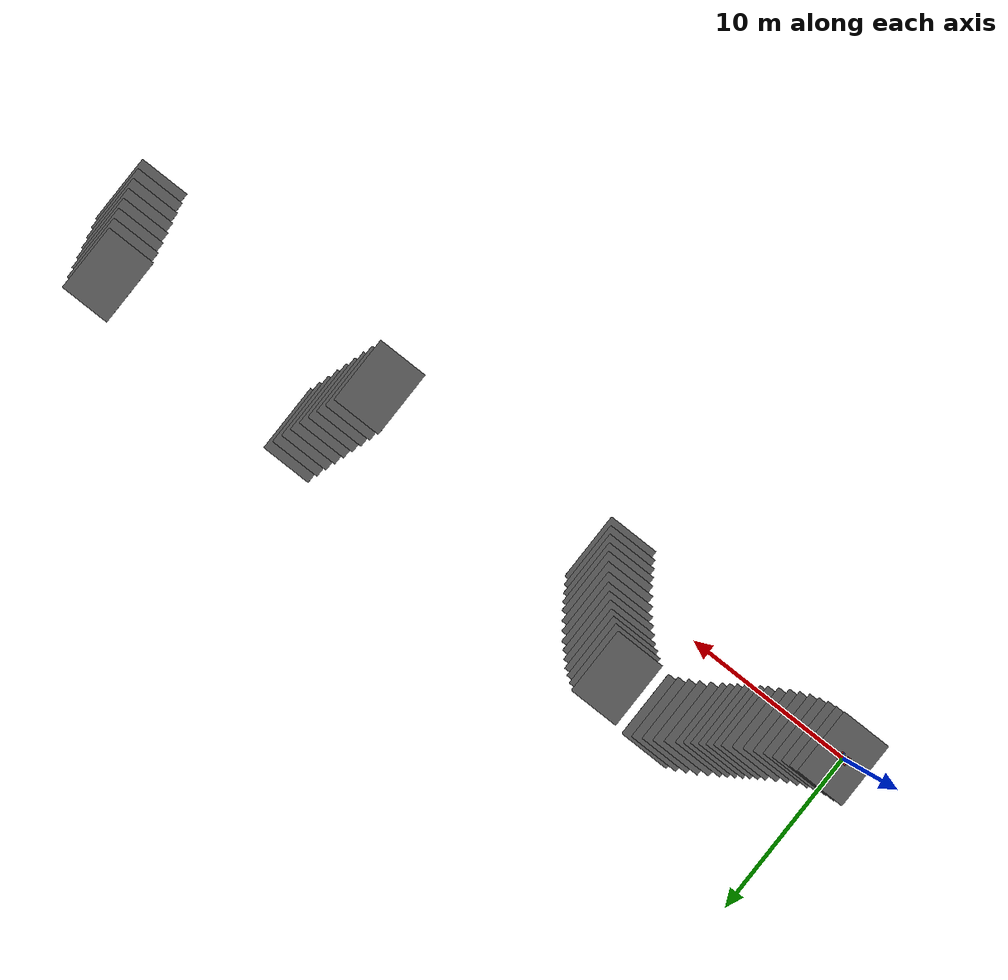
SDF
<sdf version="1.7">
 <world name="default">
  <model name="steer_bot">
   <link name="base_link">
    <inertial>
     <pose>0.00098 0.00098 0.001961 0 -0 0</pose>
     <mass>5.1</mass>
     <inertia>
      <ixx>0.042913</ixx>
      <ixy>-0.000245098</ixy>
      <ixz>-0.000490196</ixz>
      <iyy>0.10958</iyy>
      <iyz>-0.000490196</iyz>
      <izz>0.142157</izz>
     </inertia>
    </inertial>
    <collision name="base_link_collision"><geometry><box><size>0.5 0.3 0.1</size></box></geometry></collision>
    <collision name="base_link_fixed_joint_lump__imu_box_collision_1">
     <pose>0 0 0.05 0 -0 0</pose>
     <geometry><box><size>0.05 0.05 0.05</size></box></geometry>
    </collision>
    <visual name="base_link_visual">
     <geometry><box><size>0.5 0.3 0.1</size></box></geometry>
     <material>
      <script><name>Gazebo/Green</name><uri>file://media/materials/scripts/gazebo.material</uri></script>
     </material>
    </visual>
    <visual name="base_link_fixed_joint_lump__imu_box_visual_1">
     <pose>0 0 0.05 0 -0 0</pose>
     <geometry><box><size>0.05 0.05 0.05</size></box></geometry>
     <material>
      <script><name>Gazebo/White</name><uri>file://media/materials/scripts/gazebo.material</uri></script>
     </material>
    </visual>
    <sensor name="imu_sensor" type="imu">
     <always_on>1</always_on>
     <update_rate>100</update_rate>
     <visualize>1</visualize>
     <topic>__default_topic__</topic>
     <plugin name="imu_plugin" filename="libgazebo_ros_imu_sensor.so">
      <topicName>imu</topicName>
      <bodyName>imu_link</bodyName>
      <updateRateHZ>10.0</updateRateHZ>
      <gaussianNoise>2.89e-08</gaussianNoise>
      <xyzOffset>0 0 0</xyzOffset>
      <rpyOffset>0 0 0</rpyOffset>
      <frameName>imu_link</frameName>
      <inertialOrientationAsReference>0</inertialOrientationAsReference>
      <robotNamespace>/steer_bot/</robotNamespace>
     </plugin>
     <pose>0 0 0.05 0 -0 0</pose>
    </sensor>
   </link>
   <joint name="front_left_steer_joint" type="revolute">
    <pose relative_to="base_link">0.2 0.2 0.12 0 -0 0</pose>
    <parent>base_link</parent>
    <child>front_left_steer_link</child>
    <axis>
     <xyz>0 0 1</xyz>
     <limit><lower>-0.785398</lower><upper>0.785398</upper><effort>10</effort><velocity>5</velocity></limit>
     <dynamics><spring_reference>0</spring_reference><spring_stiffness>0</spring_stiffness></dynamics>
    </axis>
   </joint>
   <link name="front_left_steer_link">
    <pose relative_to="front_left_steer_joint">0 0 0 0 -0 0</pose>
    <inertial>
     <mass>1</mass>
     <inertia>
      <ixx>0.000658333</ixx>
      <ixy>0</ixy>
      <ixz>0</ixz>
      <iyy>0.000658333</iyy>
      <iyz>0</iyz>
      <izz>0.00125</izz>
     </inertia>
    </inertial>
    <collision name="front_left_steer_link_collision">
     <geometry><cylinder><length>0.02</length><radius>0.05</radius></cylinder></geometry>
    </collision>
    <visual name="front_left_steer_link_visual">
     <geometry><cylinder><length>0.02</length><radius>0.05</radius></cylinder></geometry>
     <material>
      <script><name>Gazebo/Blue</name><uri>file://media/materials/scripts/gazebo.material</uri></script>
     </material>
    </visual>
   </link>
   <joint name="front_left_wheel_joint" type="revolute">
    <pose relative_to="front_left_steer_link">0 0 -0.12 -1.5708 0 0</pose>
    <parent>front_left_steer_link</parent>
    <child>front_left_wheel_link</child>
    <axis>
     <xyz>0 0 1</xyz>
     <limit><lower>-1e+16</lower><upper>1e+16</upper></limit>
     <dynamics><spring_reference>0</spring_reference><spring_stiffness>0</spring_stiffness></dynamics>
    </axis>
   </joint>
   <link name="front_left_wheel_link">
    <pose relative_to="front_left_wheel_joint">0 0 0 0 -0 0</pose>
    <inertial>
     <mass>1</mass>
     <inertia>
      <ixx>0.00303333</ixx>
      <ixy>0</ixy>
      <ixz>0</ixz>
      <iyy>0.00303333</iyy>
      <iyz>0</iyz>
      <izz>0.005</izz>
     </inertia>
    </inertial>
    <collision name="front_left_wheel_link_collision">
     <geometry><cylinder><length>0.08</length><radius>0.1</radius></cylinder></geometry>
    </collision>
    <visual name="front_left_wheel_link_visual">
     <geometry><cylinder><length>0.08</length><radius>0.1</radius></cylinder></geometry>
     <material>
      <script><name>Gazebo/Red</name><uri>file://media/materials/scripts/gazebo.material</uri></script>
     </material>
    </visual>
   </link>
   <joint name="front_right_steer_joint" type="revolute">
    <pose relative_to="base_link">0.2 -0.2 0.12 0 -0 0</pose>
    <parent>base_link</parent>
    <child>front_right_steer_link</child>
    <axis>
     <xyz>0 0 1</xyz>
     <limit><lower>-0.785398</lower><upper>0.785398</upper><effort>10</effort><velocity>5</velocity></limit>
     <dynamics><spring_reference>0</spring_reference><spring_stiffness>0</spring_stiffness></dynamics>
    </axis>
   </joint>
   <link name="front_right_steer_link">
    <pose relative_to="front_right_steer_joint">0 0 0 0 -0 0</pose>
    <inertial>
     <mass>1</mass>
     <inertia>
      <ixx>0.000658333</ixx>
      <ixy>0</ixy>
      <ixz>0</ixz>
      <iyy>0.000658333</iyy>
      <iyz>0</iyz>
      <izz>0.00125</izz>
     </inertia>
    </inertial>
    <collision name="front_right_steer_link_collision">
     <geometry><cylinder><length>0.02</length><radius>0.05</radius></cylinder></geometry>
    </collision>
    <visual name="front_right_steer_link_visual">
     <geometry><cylinder><length>0.02</length><radius>0.05</radius></cylinder></geometry>
     <material>
      <script><name>Gazebo/Blue</name><uri>file://media/materials/scripts/gazebo.material</uri></script>
     </material>
    </visual>
   </link>
   <joint name="front_right_wheel_joint" type="revolute">
    <pose relative_to="front_right_steer_link">0 0 -0.12 -1.5708 0 0</pose>
    <parent>front_right_steer_link</parent>
    <child>front_right_wheel_link</child>
    <axis>
     <xyz>0 0 1</xyz>
     <limit><lower>-1e+16</lower><upper>1e+16</upper></limit>
     <dynamics><spring_reference>0</spring_reference><spring_stiffness>0</spring_stiffness></dynamics>
    </axis>
   </joint>
   <link name="front_right_wheel_link">
    <pose relative_to="front_right_wheel_joint">0 0 0 0 -0 0</pose>
    <inertial>
     <mass>1</mass>
     <inertia>
      <ixx>0.00303333</ixx>
      <ixy>0</ixy>
      <ixz>0</ixz>
      <iyy>0.00303333</iyy>
      <iyz>0</iyz>
      <izz>0.005</izz>
     </inertia>
    </inertial>
    <collision name="front_right_wheel_link_collision">
     <geometry><cylinder><length>0.08</length><radius>0.1</radius></cylinder></geometry>
    </collision>
    <visual name="front_right_wheel_link_visual">
     <geometry><cylinder><length>0.08</length><radius>0.1</radius></cylinder></geometry>
     <material>
      <script><name>Gazebo/Red</name><uri>file://media/materials/scripts/gazebo.material</uri></script>
     </material>
    </visual>
   </link>
   <joint name="front_steer_joint" type="revolute">
    <pose relative_to="base_link">0.2 0 0.12 0 -0 0</pose>
    <parent>base_link</parent>
    <child>front_steer_link</child>
    <axis>
     <xyz>0 0 1</xyz>
     <limit><lower>-3.14159</lower><upper>3.14159</upper><effort>10</effort><velocity>5</velocity></limit>
     <dynamics><spring_reference>0</spring_reference><spring_stiffness>0</spring_stiffness></dynamics>
    </axis>
   </joint>
   <link name="front_steer_link">
    <pose relative_to="front_steer_joint">0 0 0 0 -0 0</pose>
    <inertial>
     <mass>1</mass>
     <inertia>
      <ixx>0.000658333</ixx>
      <ixy>0</ixy>
      <ixz>0</ixz>
      <iyy>0.000658333</iyy>
      <iyz>0</iyz>
      <izz>0.00125</izz>
     </inertia>
    </inertial>
    <collision name="front_steer_link_collision">
     <geometry><cylinder><length>0.02</length><radius>0.05</radius></cylinder></geometry>
    </collision>
    <visual name="front_steer_link_visual">
     <geometry><cylinder><length>0.02</length><radius>0.05</radius></cylinder></geometry>
     <material>
      <script><name>Gazebo/Yellow</name><uri>file://media/materials/scripts/gazebo.material</uri></script>
     </material>
    </visual>
   </link>
   <joint name="rear_left_wheel_joint" type="revolute">
    <pose relative_to="base_link">-0.2 0.2 0 -1.5708 0 0</pose>
    <parent>base_link</parent>
    <child>rear_left_wheel_link</child>
    <axis>
     <xyz>0 0 1</xyz>
     <limit><lower>-1e+16</lower><upper>1e+16</upper></limit>
     <dynamics><spring_reference>0</spring_reference><spring_stiffness>0</spring_stiffness></dynamics>
    </axis>
   </joint>
   <link name="rear_left_wheel_link">
    <pose relative_to="rear_left_wheel_joint">0 0 0 0 -0 0</pose>
    <inertial>
     <mass>1</mass>
     <inertia>
      <ixx>0.00303333</ixx>
      <ixy>0</ixy>
      <ixz>0</ixz>
      <iyy>0.00303333</iyy>
      <iyz>0</iyz>
      <izz>0.005</izz>
     </inertia>
    </inertial>
    <collision name="rear_left_wheel_link_collision">
     <geometry><cylinder><length>0.08</length><radius>0.1</radius></cylinder></geometry>
    </collision>
    <visual name="rear_left_wheel_link_visual">
     <geometry><cylinder><length>0.08</length><radius>0.1</radius></cylinder></geometry>
     <material>
      <script><name>Gazebo/Red</name><uri>file://media/materials/scripts/gazebo.material</uri></script>
     </material>
    </visual>
   </link>
   <joint name="rear_right_wheel_joint" type="revolute">
    <pose relative_to="base_link">-0.2 -0.2 0 -1.5708 0 0</pose>
    <parent>base_link</parent>
    <child>rear_right_wheel_link</child>
    <axis>
     <xyz>0 0 1</xyz>
     <limit><lower>-1e+16</lower><upper>1e+16</upper></limit>
     <dynamics><spring_reference>0</spring_reference><spring_stiffness>0</spring_stiffness></dynamics>
    </axis>
   </joint>
   <link name="rear_right_wheel_link">
    <pose relative_to="rear_right_wheel_joint">0 0 0 0 -0 0</pose>
    <inertial>
     <mass>1</mass>
     <inertia>
      <ixx>0.00303333</ixx>
      <ixy>0</ixy>
      <ixz>0</ixz>
      <iyy>0.00303333</iyy>
      <iyz>0</iyz>
      <izz>0.005</izz>
     </inertia>
    </inertial>
    <collision name="rear_right_wheel_link_collision">
     <geometry><cylinder><length>0.08</length><radius>0.1</radius></cylinder></geometry>
    </collision>
    <visual name="rear_right_wheel_link_visual">
     <geometry><cylinder><length>0.08</length><radius>0.1</radius></cylinder></geometry>
     <material>
      <script><name>Gazebo/Red</name><uri>file://media/materials/scripts/gazebo.material</uri></script>
     </material>
    </visual>
   </link>
   <joint name="rear_wheel_joint" type="revolute">
    <pose relative_to="base_link">-0.2 0 0 -1.5708 0 0</pose>
    <parent>base_link</parent>
    <child>rear_wheel_link</child>
    <axis>
     <xyz>0 0 1</xyz>
     <limit><lower>-1e+16</lower><upper>1e+16</upper></limit>
     <dynamics><spring_reference>0</spring_reference><spring_stiffness>0</spring_stiffness></dynamics>
    </axis>
   </joint>
   <link name="rear_wheel_link">
    <pose relative_to="rear_wheel_joint">0 0 0 0 -0 0</pose>
    <inertial>
     <mass>0.03125</mass>
     <inertia>
      <ixx>9.04948e-06</ixx>
      <ixy>0</ixy>
      <ixz>0</ixz>
      <iyy>9.04948e-06</iyy>
      <iyz>0</iyz>
      <izz>9.76563e-06</izz>
     </inertia>
    </inertial>
    <collision name="rear_wheel_link_collision">
     <geometry><cylinder><length>0.04</length><radius>0.025</radius></cylinder></geometry>
    </collision>
    <visual name="rear_wheel_link_visual">
     <geometry><cylinder><length>0.04</length><radius>0.025</radius></cylinder></geometry>
     <material>
      <script><name>Gazebo/Yellow</name><uri>file://media/materials/scripts/gazebo.material</uri></script>
     </material>
    </visual>
   </link>
   <static>0</static>
   <plugin name="gazebo_ros_control" filename="libgazebo_ros_control.so">
    <robotNamespace>/steer_bot</robotNamespace>
    <robotSimType>steer_bot_hardware_gazebo/SteerBotHardwareGazebo</robotSimType>
    <legacyModeNS>0</legacyModeNS>
   </plugin>
   <plugin name="p3d_base_controller" filename="libgazebo_ros_p3d.so">
    <alwaysOn>1</alwaysOn>
    <updateRate>50.0</updateRate>
    <bodyName>base_link</bodyName>
    <topicName>pose_ground_truth</topicName>
    <gaussianNoise>0.00</gaussianNoise>
    <frameName>world</frameName>
    <xyzOffsets>0 0 0</xyzOffsets>
    <rpyOffsets>0 0 0</rpyOffsets>
    <robotNamespace>/steer_bot/</robotNamespace>
   </plugin>
   <pose>-0.002082 -0.017108 0.104996 0 6e-06 -0.057589</pose>
  </model>
  <model name="roadSegment_0_0">
   <static>1</static>
   <link name="link">
    <collision name="collision"><geometry><box><size>3 4 0.01</size></box></geometry></collision>
    <visual name="visual">
     <cast_shadows>0</cast_shadows>
     <geometry><box><size>3 4 0.01</size></box></geometry>
     <material>
      <script>
       <uri>model://asphalt_plane/materials/scripts</uri>
       <uri>model://asphalt_plane/materials/textures</uri>
       <name>vrc/asphalt</name>
      </script>
     </material>
    </visual>
   </link>
  </model>
  <model name="roadSegment_0_1">
   <static>1</static>
   <link name="link">
    <collision name="collision"><geometry><box><size>3 4 0.01</size></box></geometry></collision>
    <visual name="visual">
     <cast_shadows>0</cast_shadows>
     <geometry><box><size>3 4 0.01</size></box></geometry>
     <material>
      <script>
       <uri>model://asphalt_plane/materials/scripts</uri>
       <uri>model://asphalt_plane/materials/textures</uri>
       <name>vrc/asphalt</name>
      </script>
     </material>
    </visual>
   </link>
   <pose>0.5 0.049667 0 0 -0 0</pose>
  </model>
  <model name="roadSegment_1_0">
   <static>1</static>
   <link name="link">
    <collision name="collision"><geometry><box><size>3 4 0.01</size></box></geometry></collision>
    <visual name="visual">
     <cast_shadows>0</cast_shadows>
     <geometry><box><size>3 4 0.01</size></box></geometry>
     <material>
      <script>
       <uri>model://asphalt_plane/materials/scripts</uri>
       <uri>model://asphalt_plane/materials/textures</uri>
       <name>vrc/asphalt</name>
      </script>
     </material>
    </visual>
   </link>
   <pose>1 0.099335 0 0 -0 0</pose>
  </model>
  <model name="roadSegment_1_1">
   <static>1</static>
   <link name="link">
    <collision name="collision"><geometry><box><size>3 4 0.01</size></box></geometry></collision>
    <visual name="visual">
     <cast_shadows>0</cast_shadows>
     <geometry><box><size>3 4 0.01</size></box></geometry>
     <material>
      <script>
       <uri>model://asphalt_plane/materials/scripts</uri>
       <uri>model://asphalt_plane/materials/textures</uri>
       <name>vrc/asphalt</name>
      </script>
     </material>
    </visual>
   </link>
   <pose>1.5 0.244377 0 0 -0 0</pose>
  </model>
  <model name="roadSegment_2_0">
   <static>1</static>
   <link name="link">
    <collision name="collision"><geometry><box><size>3 4 0.01</size></box></geometry></collision>
    <visual name="visual">
     <cast_shadows>0</cast_shadows>
     <geometry><box><size>3 4 0.01</size></box></geometry>
     <material>
      <script>
       <uri>model://asphalt_plane/materials/scripts</uri>
       <uri>model://asphalt_plane/materials/textures</uri>
       <name>vrc/asphalt</name>
      </script>
     </material>
    </visual>
   </link>
   <pose>2 0.389418 0 0 -0 0</pose>
  </model>
  <model name="roadSegment_2_1">
   <static>1</static>
   <link name="link">
    <collision name="collision"><geometry><box><size>3 4 0.01</size></box></geometry></collision>
    <visual name="visual">
     <cast_shadows>0</cast_shadows>
     <geometry><box><size>3 4 0.01</size></box></geometry>
     <material>
      <script>
       <uri>model://asphalt_plane/materials/scripts</uri>
       <uri>model://asphalt_plane/materials/textures</uri>
       <name>vrc/asphalt</name>
      </script>
     </material>
    </visual>
   </link>
   <pose>2.5 0.618191 0 0 -0 0</pose>
  </model>
  <model name="roadSegment_3_0">
   <static>1</static>
   <link name="link">
    <collision name="collision"><geometry><box><size>3 4 0.01</size></box></geometry></collision>
    <visual name="visual">
     <cast_shadows>0</cast_shadows>
     <geometry><box><size>3 4 0.01</size></box></geometry>
     <material>
      <script>
       <uri>model://asphalt_plane/materials/scripts</uri>
       <uri>model://asphalt_plane/materials/textures</uri>
       <name>vrc/asphalt</name>
      </script>
     </material>
    </visual>
   </link>
   <pose>3 0.846964 0 0 -0 0</pose>
  </model>
  <model name="roadSegment_3_1">
   <static>1</static>
   <link name="link">
    <collision name="collision"><geometry><box><size>3 4 0.01</size></box></geometry></collision>
    <visual name="visual">
     <cast_shadows>0</cast_shadows>
     <geometry><box><size>3 4 0.01</size></box></geometry>
     <material>
      <script>
       <uri>model://asphalt_plane/materials/scripts</uri>
       <uri>model://asphalt_plane/materials/textures</uri>
       <name>vrc/asphalt</name>
      </script>
     </material>
    </visual>
   </link>
   <pose>3.5 1.14084 0 0 -0 0</pose>
  </model>
  <model name="roadSegment_4_0">
   <static>1</static>
   <link name="link">
    <collision name="collision"><geometry><box><size>3 4 0.01</size></box></geometry></collision>
    <visual name="visual">
     <cast_shadows>0</cast_shadows>
     <geometry><box><size>3 4 0.01</size></box></geometry>
     <material>
      <script>
       <uri>model://asphalt_plane/materials/scripts</uri>
       <uri>model://asphalt_plane/materials/textures</uri>
       <name>vrc/asphalt</name>
      </script>
     </material>
    </visual>
   </link>
   <pose>4 1.43471 0 0 -0 0</pose>
  </model>
  <model name="roadSegment_4_1">
   <static>1</static>
   <link name="link">
    <collision name="collision"><geometry><box><size>3 4 0.01</size></box></geometry></collision>
    <visual name="visual">
     <cast_shadows>0</cast_shadows>
     <geometry><box><size>3 4 0.01</size></box></geometry>
     <material>
      <script>
       <uri>model://asphalt_plane/materials/scripts</uri>
       <uri>model://asphalt_plane/materials/textures</uri>
       <name>vrc/asphalt</name>
      </script>
     </material>
    </visual>
   </link>
   <pose>4.33333 1.6577 0 0 -0 0</pose>
  </model>
  <model name="roadSegment_4_2">
   <static>1</static>
   <link name="link">
    <collision name="collision"><geometry><box><size>3 4 0.01</size></box></geometry></collision>
    <visual name="visual">
     <cast_shadows>0</cast_shadows>
     <geometry><box><size>3 4 0.01</size></box></geometry>
     <material>
      <script>
       <uri>model://asphalt_plane/materials/scripts</uri>
       <uri>model://asphalt_plane/materials/textures</uri>
       <name>vrc/asphalt</name>
      </script>
     </material>
    </visual>
   </link>
   <pose>4.66667 1.88069 0 0 -0 0</pose>
  </model>
  <model name="roadSegment_5_0">
   <static>1</static>
   <link name="link">
    <collision name="collision"><geometry><box><size>3 4 0.01</size></box></geometry></collision>
    <visual name="visual">
     <cast_shadows>0</cast_shadows>
     <geometry><box><size>3 4 0.01</size></box></geometry>
     <material>
      <script>
       <uri>model://asphalt_plane/materials/scripts</uri>
       <uri>model://asphalt_plane/materials/textures</uri>
       <name>vrc/asphalt</name>
      </script>
     </material>
    </visual>
   </link>
   <pose>5 2.10368 0 0 -0 0</pose>
  </model>
  <model name="roadSegment_5_1">
   <static>1</static>
   <link name="link">
    <collision name="collision"><geometry><box><size>3 4 0.01</size></box></geometry></collision>
    <visual name="visual">
     <cast_shadows>0</cast_shadows>
     <geometry><box><size>3 4 0.01</size></box></geometry>
     <material>
      <script>
       <uri>model://asphalt_plane/materials/scripts</uri>
       <uri>model://asphalt_plane/materials/textures</uri>
       <name>vrc/asphalt</name>
      </script>
     </material>
    </visual>
   </link>
   <pose>5.33333 2.33449 0 0 -0 0</pose>
  </model>
  <model name="roadSegment_5_2">
   <static>1</static>
   <link name="link">
    <collision name="collision"><geometry><box><size>3 4 0.01</size></box></geometry></collision>
    <visual name="visual">
     <cast_shadows>0</cast_shadows>
     <geometry><box><size>3 4 0.01</size></box></geometry>
     <material>
      <script>
       <uri>model://asphalt_plane/materials/scripts</uri>
       <uri>model://asphalt_plane/materials/textures</uri>
       <name>vrc/asphalt</name>
      </script>
     </material>
    </visual>
   </link>
   <pose>5.66667 2.5653 0 0 -0 0</pose>
  </model>
  <model name="roadSegment_6_0">
   <static>1</static>
   <link name="link">
    <collision name="collision"><geometry><box><size>3 4 0.01</size></box></geometry></collision>
    <visual name="visual">
     <cast_shadows>0</cast_shadows>
     <geometry><box><size>3 4 0.01</size></box></geometry>
     <material>
      <script>
       <uri>model://asphalt_plane/materials/scripts</uri>
       <uri>model://asphalt_plane/materials/textures</uri>
       <name>vrc/asphalt</name>
      </script>
     </material>
    </visual>
   </link>
   <pose>6 2.79612 0 0 -0 0</pose>
  </model>
  <model name="roadSegment_6_1">
   <static>1</static>
   <link name="link">
    <collision name="collision"><geometry><box><size>3 4 0.01</size></box></geometry></collision>
    <visual name="visual">
     <cast_shadows>0</cast_shadows>
     <geometry><box><size>3 4 0.01</size></box></geometry>
     <material>
      <script>
       <uri>model://asphalt_plane/materials/scripts</uri>
       <uri>model://asphalt_plane/materials/textures</uri>
       <name>vrc/asphalt</name>
      </script>
     </material>
    </visual>
   </link>
   <pose>6.5 3.1226 0 0 -0 0</pose>
  </model>
  <model name="roadSegment_7_0">
   <static>1</static>
   <link name="link">
    <collision name="collision"><geometry><box><size>3 4 0.01</size></box></geometry></collision>
    <visual name="visual">
     <cast_shadows>0</cast_shadows>
     <geometry><box><size>3 4 0.01</size></box></geometry>
     <material>
      <script>
       <uri>model://asphalt_plane/materials/scripts</uri>
       <uri>model://asphalt_plane/materials/textures</uri>
       <name>vrc/asphalt</name>
      </script>
     </material>
    </visual>
   </link>
   <pose>7 3.44907 0 0 -0 0</pose>
  </model>
  <model name="roadSegment_7_1">
   <static>1</static>
   <link name="link">
    <collision name="collision"><geometry><box><size>3 4 0.01</size></box></geometry></collision>
    <visual name="visual">
     <cast_shadows>0</cast_shadows>
     <geometry><box><size>3 4 0.01</size></box></geometry>
     <material>
      <script>
       <uri>model://asphalt_plane/materials/scripts</uri>
       <uri>model://asphalt_plane/materials/textures</uri>
       <name>vrc/asphalt</name>
      </script>
     </material>
    </visual>
   </link>
   <pose>7.5 3.72368 0 0 -0 0</pose>
  </model>
  <model name="roadSegment_8_0">
   <static>1</static>
   <link name="link">
    <collision name="collision"><geometry><box><size>3 4 0.01</size></box></geometry></collision>
    <visual name="visual">
     <cast_shadows>0</cast_shadows>
     <geometry><box><size>3 4 0.01</size></box></geometry>
     <material>
      <script>
       <uri>model://asphalt_plane/materials/scripts</uri>
       <uri>model://asphalt_plane/materials/textures</uri>
       <name>vrc/asphalt</name>
      </script>
     </material>
    </visual>
   </link>
   <pose>8 3.99829 0 0 -0 0</pose>
  </model>
  <model name="roadSegment_8_1">
   <static>1</static>
   <link name="link">
    <collision name="collision"><geometry><box><size>3 4 0.01</size></box></geometry></collision>
    <visual name="visual">
     <cast_shadows>0</cast_shadows>
     <geometry><box><size>3 4 0.01</size></box></geometry>
     <material>
      <script>
       <uri>model://asphalt_plane/materials/scripts</uri>
       <uri>model://asphalt_plane/materials/textures</uri>
       <name>vrc/asphalt</name>
      </script>
     </material>
    </visual>
   </link>
   <pose>8.5 4.1903 0 0 -0 0</pose>
  </model>
  <model name="roadSegment_12_0">
   <static>1</static>
   <link name="link">
    <collision name="collision"><geometry><box><size>3 4 0.01</size></box></geometry></collision>
    <visual name="visual">
     <cast_shadows>0</cast_shadows>
     <geometry><box><size>3 4 0.01</size></box></geometry>
     <material>
      <script>
       <uri>model://asphalt_plane/materials/scripts</uri>
       <uri>model://asphalt_plane/materials/textures</uri>
       <name>vrc/asphalt</name>
      </script>
     </material>
    </visual>
   </link>
   <pose>12 4.05278 0 0 -0 0</pose>
  </model>
  <model name="roadSegment_12_1">
   <static>1</static>
   <link name="link">
    <collision name="collision"><geometry><box><size>3 4 0.01</size></box></geometry></collision>
    <visual name="visual">
     <cast_shadows>0</cast_shadows>
     <geometry><box><size>3 4 0.01</size></box></geometry>
     <material>
      <script>
       <uri>model://asphalt_plane/materials/scripts</uri>
       <uri>model://asphalt_plane/materials/textures</uri>
       <name>vrc/asphalt</name>
      </script>
     </material>
    </visual>
   </link>
   <pose>12.3333 3.81877 0 0 -0 0</pose>
  </model>
  <model name="roadSegment_12_2">
   <static>1</static>
   <link name="link">
    <collision name="collision"><geometry><box><size>3 4 0.01</size></box></geometry></collision>
    <visual name="visual">
     <cast_shadows>0</cast_shadows>
     <geometry><box><size>3 4 0.01</size></box></geometry>
     <material>
      <script>
       <uri>model://asphalt_plane/materials/scripts</uri>
       <uri>model://asphalt_plane/materials/textures</uri>
       <name>vrc/asphalt</name>
      </script>
     </material>
    </visual>
   </link>
   <pose>12.6667 3.58477 0 0 -0 0</pose>
  </model>
  <model name="roadSegment_13_0">
   <static>1</static>
   <link name="link">
    <collision name="collision"><geometry><box><size>3 4 0.01</size></box></geometry></collision>
    <visual name="visual">
     <cast_shadows>0</cast_shadows>
     <geometry><box><size>3 4 0.01</size></box></geometry>
     <material>
      <script>
       <uri>model://asphalt_plane/materials/scripts</uri>
       <uri>model://asphalt_plane/materials/textures</uri>
       <name>vrc/asphalt</name>
      </script>
     </material>
    </visual>
   </link>
   <pose>13 3.35076 0 0 -0 0</pose>
  </model>
  <model name="roadSegment_13_1">
   <static>1</static>
   <link name="link">
    <collision name="collision"><geometry><box><size>3 4 0.01</size></box></geometry></collision>
    <visual name="visual">
     <cast_shadows>0</cast_shadows>
     <geometry><box><size>3 4 0.01</size></box></geometry>
     <material>
      <script>
       <uri>model://asphalt_plane/materials/scripts</uri>
       <uri>model://asphalt_plane/materials/textures</uri>
       <name>vrc/asphalt</name>
      </script>
     </material>
    </visual>
   </link>
   <pose>13.3333 3.01548 0 0 -0 0</pose>
  </model>
  <model name="roadSegment_13_2">
   <static>1</static>
   <link name="link">
    <collision name="collision"><geometry><box><size>3 4 0.01</size></box></geometry></collision>
    <visual name="visual">
     <cast_shadows>0</cast_shadows>
     <geometry><box><size>3 4 0.01</size></box></geometry>
     <material>
      <script>
       <uri>model://asphalt_plane/materials/scripts</uri>
       <uri>model://asphalt_plane/materials/textures</uri>
       <name>vrc/asphalt</name>
      </script>
     </material>
    </visual>
   </link>
   <pose>13.6667 2.6802 0 0 -0 0</pose>
  </model>
  <model name="roadSegment_14_0">
   <static>1</static>
   <link name="link">
    <collision name="collision"><geometry><box><size>3 4 0.01</size></box></geometry></collision>
    <visual name="visual">
     <cast_shadows>0</cast_shadows>
     <geometry><box><size>3 4 0.01</size></box></geometry>
     <material>
      <script>
       <uri>model://asphalt_plane/materials/scripts</uri>
       <uri>model://asphalt_plane/materials/textures</uri>
       <name>vrc/asphalt</name>
      </script>
     </material>
    </visual>
   </link>
   <pose>14 2.34492 0 0 -0 0</pose>
  </model>
  <model name="roadSegment_14_1">
   <static>1</static>
   <link name="link">
    <collision name="collision"><geometry><box><size>3 4 0.01</size></box></geometry></collision>
    <visual name="visual">
     <cast_shadows>0</cast_shadows>
     <geometry><box><size>3 4 0.01</size></box></geometry>
     <material>
      <script>
       <uri>model://asphalt_plane/materials/scripts</uri>
       <uri>model://asphalt_plane/materials/textures</uri>
       <name>vrc/asphalt</name>
      </script>
     </material>
    </visual>
   </link>
   <pose>14.3333 1.91608 0 0 -0 0</pose>
  </model>
  <model name="roadSegment_14_2">
   <static>1</static>
   <link name="link">
    <collision name="collision"><geometry><box><size>3 4 0.01</size></box></geometry></collision>
    <visual name="visual">
     <cast_shadows>0</cast_shadows>
     <geometry><box><size>3 4 0.01</size></box></geometry>
     <material>
      <script>
       <uri>model://asphalt_plane/materials/scripts</uri>
       <uri>model://asphalt_plane/materials/textures</uri>
       <name>vrc/asphalt</name>
      </script>
     </material>
    </visual>
   </link>
   <pose>14.6667 1.48724 0 0 -0 0</pose>
  </model>
  <model name="roadSegment_15_0">
   <static>1</static>
   <link name="link">
    <collision name="collision"><geometry><box><size>3 4 0.01</size></box></geometry></collision>
    <visual name="visual">
     <cast_shadows>0</cast_shadows>
     <geometry><box><size>3 4 0.01</size></box></geometry>
     <material>
      <script>
       <uri>model://asphalt_plane/materials/scripts</uri>
       <uri>model://asphalt_plane/materials/textures</uri>
       <name>vrc/asphalt</name>
      </script>
     </material>
    </visual>
   </link>
   <pose>15 1.0584 0 0 -0 0</pose>
  </model>
  <model name="roadSegment_15_1">
   <static>1</static>
   <link name="link">
    <collision name="collision"><geometry><box><size>3 4 0.01</size></box></geometry></collision>
    <visual name="visual">
     <cast_shadows>0</cast_shadows>
     <geometry><box><size>3 4 0.01</size></box></geometry>
     <material>
      <script>
       <uri>model://asphalt_plane/materials/scripts</uri>
       <uri>model://asphalt_plane/materials/textures</uri>
       <name>vrc/asphalt</name>
      </script>
     </material>
    </visual>
   </link>
   <pose>15.25 0.677052 0 0 -0 0</pose>
  </model>
  <model name="roadSegment_15_2">
   <static>1</static>
   <link name="link">
    <collision name="collision"><geometry><box><size>3 4 0.01</size></box></geometry></collision>
    <visual name="visual">
     <cast_shadows>0</cast_shadows>
     <geometry><box><size>3 4 0.01</size></box></geometry>
     <material>
      <script>
       <uri>model://asphalt_plane/materials/scripts</uri>
       <uri>model://asphalt_plane/materials/textures</uri>
       <name>vrc/asphalt</name>
      </script>
     </material>
    </visual>
   </link>
   <pose>15.5 0.295703 0 0 -0 0</pose>
  </model>
  <model name="roadSegment_15_3">
   <static>1</static>
   <link name="link">
    <collision name="collision"><geometry><box><size>3 4 0.01</size></box></geometry></collision>
    <visual name="visual">
     <cast_shadows>0</cast_shadows>
     <geometry><box><size>3 4 0.01</size></box></geometry>
     <material>
      <script>
       <uri>model://asphalt_plane/materials/scripts</uri>
       <uri>model://asphalt_plane/materials/textures</uri>
       <name>vrc/asphalt</name>
      </script>
     </material>
    </visual>
   </link>
   <pose>15.75 -0.085645 0 0 -0 0</pose>
  </model>
  <model name="roadSegment_16_0">
   <static>1</static>
   <link name="link">
    <collision name="collision"><geometry><box><size>3 4 0.01</size></box></geometry></collision>
    <visual name="visual">
     <cast_shadows>0</cast_shadows>
     <geometry><box><size>3 4 0.01</size></box></geometry>
     <material>
      <script>
       <uri>model://asphalt_plane/materials/scripts</uri>
       <uri>model://asphalt_plane/materials/textures</uri>
       <name>vrc/asphalt</name>
      </script>
     </material>
    </visual>
   </link>
   <pose>16 -0.466993 0 0 -0 0</pose>
  </model>
  <model name="roadSegment_31_2">
   <static>1</static>
   <link name="link">
    <collision name="collision"><geometry><box><size>3 4 0.01</size></box></geometry></collision>
    <visual name="visual">
     <cast_shadows>0</cast_shadows>
     <geometry><box><size>3 4 0.01</size></box></geometry>
     <material>
      <script>
       <uri>model://asphalt_plane/materials/scripts</uri>
       <uri>model://asphalt_plane/materials/textures</uri>
       <name>vrc/asphalt</name>
      </script>
     </material>
    </visual>
   </link>
   <pose>31.3333 -0.236995 0 0 -0 0</pose>
  </model>
  <model name="roadSegment_31_3">
   <static>1</static>
   <link name="link">
    <collision name="collision"><geometry><box><size>3 4 0.01</size></box></geometry></collision>
    <visual name="visual">
     <cast_shadows>0</cast_shadows>
     <geometry><box><size>3 4 0.01</size></box></geometry>
     <material>
      <script>
       <uri>model://asphalt_plane/materials/scripts</uri>
       <uri>model://asphalt_plane/materials/textures</uri>
       <name>vrc/asphalt</name>
      </script>
     </material>
    </visual>
   </link>
   <pose>31.5 0.288451 0 0 -0 0</pose>
  </model>
  <model name="roadSegment_31_4">
   <static>1</static>
   <link name="link">
    <collision name="collision"><geometry><box><size>3 4 0.01</size></box></geometry></collision>
    <visual name="visual">
     <cast_shadows>0</cast_shadows>
     <geometry><box><size>3 4 0.01</size></box></geometry>
     <material>
      <script>
       <uri>model://asphalt_plane/materials/scripts</uri>
       <uri>model://asphalt_plane/materials/textures</uri>
       <name>vrc/asphalt</name>
      </script>
     </material>
    </visual>
   </link>
   <pose>31.6667 0.813896 0 0 -0 0</pose>
  </model>
  <model name="roadSegment_31_5">
   <static>1</static>
   <link name="link">
    <collision name="collision"><geometry><box><size>3 4 0.01</size></box></geometry></collision>
    <visual name="visual">
     <cast_shadows>0</cast_shadows>
     <geometry><box><size>3 4 0.01</size></box></geometry>
     <material>
      <script>
       <uri>model://asphalt_plane/materials/scripts</uri>
       <uri>model://asphalt_plane/materials/textures</uri>
       <name>vrc/asphalt</name>
      </script>
     </material>
    </visual>
   </link>
   <pose>31.8333 1.33934 0 0 -0 0</pose>
  </model>
  <model name="roadSegment_32_0">
   <static>1</static>
   <link name="link">
    <collision name="collision"><geometry><box><size>3 4 0.01</size></box></geometry></collision>
    <visual name="visual">
     <cast_shadows>0</cast_shadows>
     <geometry><box><size>3 4 0.01</size></box></geometry>
     <material>
      <script>
       <uri>model://asphalt_plane/materials/scripts</uri>
       <uri>model://asphalt_plane/materials/textures</uri>
       <name>vrc/asphalt</name>
      </script>
     </material>
    </visual>
   </link>
   <pose>32 1.86479 0 0 -0 0</pose>
  </model>
  <model name="roadSegment_32_1">
   <static>1</static>
   <link name="link">
    <collision name="collision"><geometry><box><size>3 4 0.01</size></box></geometry></collision>
    <visual name="visual">
     <cast_shadows>0</cast_shadows>
     <geometry><box><size>3 4 0.01</size></box></geometry>
     <material>
      <script>
       <uri>model://asphalt_plane/materials/scripts</uri>
       <uri>model://asphalt_plane/materials/textures</uri>
       <name>vrc/asphalt</name>
      </script>
     </material>
    </visual>
   </link>
   <pose>32.1667 2.41073 0 0 -0 0</pose>
  </model>
  <model name="roadSegment_32_2">
   <static>1</static>
   <link name="link">
    <collision name="collision"><geometry><box><size>3 4 0.01</size></box></geometry></collision>
    <visual name="visual">
     <cast_shadows>0</cast_shadows>
     <geometry><box><size>3 4 0.01</size></box></geometry>
     <material>
      <script>
       <uri>model://asphalt_plane/materials/scripts</uri>
       <uri>model://asphalt_plane/materials/textures</uri>
       <name>vrc/asphalt</name>
      </script>
     </material>
    </visual>
   </link>
   <pose>32.3333 2.95667 0 0 -0 0</pose>
  </model>
  <model name="roadSegment_32_3">
   <static>1</static>
   <link name="link">
    <collision name="collision"><geometry><box><size>3 4 0.01</size></box></geometry></collision>
    <visual name="visual">
     <cast_shadows>0</cast_shadows>
     <geometry><box><size>3 4 0.01</size></box></geometry>
     <material>
      <script>
       <uri>model://asphalt_plane/materials/scripts</uri>
       <uri>model://asphalt_plane/materials/textures</uri>
       <name>vrc/asphalt</name>
      </script>
     </material>
    </visual>
   </link>
   <pose>32.5 3.50261 0 0 -0 0</pose>
  </model>
  <model name="roadSegment_32_4">
   <static>1</static>
   <link name="link">
    <collision name="collision"><geometry><box><size>3 4 0.01</size></box></geometry></collision>
    <visual name="visual">
     <cast_shadows>0</cast_shadows>
     <geometry><box><size>3 4 0.01</size></box></geometry>
     <material>
      <script>
       <uri>model://asphalt_plane/materials/scripts</uri>
       <uri>model://asphalt_plane/materials/textures</uri>
       <name>vrc/asphalt</name>
      </script>
     </material>
    </visual>
   </link>
   <pose>32.6667 4.04855 0 0 -0 0</pose>
  </model>
  <model name="roadSegment_46_2">
   <static>1</static>
   <link name="link">
    <collision name="collision"><geometry><box><size>3 4 0.01</size></box></geometry></collision>
    <visual name="visual">
     <cast_shadows>0</cast_shadows>
     <geometry><box><size>3 4 0.01</size></box></geometry>
     <material>
      <script>
       <uri>model://asphalt_plane/materials/scripts</uri>
       <uri>model://asphalt_plane/materials/textures</uri>
       <name>vrc/asphalt</name>
      </script>
     </material>
    </visual>
   </link>
   <pose>46.25 3.99041 0 0 -0 0</pose>
  </model>
  <model name="roadSegment_46_3">
   <static>1</static>
   <link name="link">
    <collision name="collision"><geometry><box><size>3 4 0.01</size></box></geometry></collision>
    <visual name="visual">
     <cast_shadows>0</cast_shadows>
     <geometry><box><size>3 4 0.01</size></box></geometry>
     <material>
      <script>
       <uri>model://asphalt_plane/materials/scripts</uri>
       <uri>model://asphalt_plane/materials/textures</uri>
       <name>vrc/asphalt</name>
      </script>
     </material>
    </visual>
   </link>
   <pose>46.375 3.42238 0 0 -0 0</pose>
  </model>
  <model name="roadSegment_46_4">
   <static>1</static>
   <link name="link">
    <collision name="collision"><geometry><box><size>3 4 0.01</size></box></geometry></collision>
    <visual name="visual">
     <cast_shadows>0</cast_shadows>
     <geometry><box><size>3 4 0.01</size></box></geometry>
     <material>
      <script>
       <uri>model://asphalt_plane/materials/scripts</uri>
       <uri>model://asphalt_plane/materials/textures</uri>
       <name>vrc/asphalt</name>
      </script>
     </material>
    </visual>
   </link>
   <pose>46.5 2.85435 0 0 -0 0</pose>
  </model>
  <model name="roadSegment_46_5">
   <static>1</static>
   <link name="link">
    <collision name="collision"><geometry><box><size>3 4 0.01</size></box></geometry></collision>
    <visual name="visual">
     <cast_shadows>0</cast_shadows>
     <geometry><box><size>3 4 0.01</size></box></geometry>
     <material>
      <script>
       <uri>model://asphalt_plane/materials/scripts</uri>
       <uri>model://asphalt_plane/materials/textures</uri>
       <name>vrc/asphalt</name>
      </script>
     </material>
    </visual>
   </link>
   <pose>46.625 2.28631 0 0 -0 0</pose>
  </model>
  <model name="roadSegment_46_6">
   <static>1</static>
   <link name="link">
    <collision name="collision"><geometry><box><size>3 4 0.01</size></box></geometry></collision>
    <visual name="visual">
     <cast_shadows>0</cast_shadows>
     <geometry><box><size>3 4 0.01</size></box></geometry>
     <material>
      <script>
       <uri>model://asphalt_plane/materials/scripts</uri>
       <uri>model://asphalt_plane/materials/textures</uri>
       <name>vrc/asphalt</name>
      </script>
     </material>
    </visual>
   </link>
   <pose>46.75 1.71828 0 0 -0 0</pose>
  </model>
  <model name="roadSegment_46_7">
   <static>1</static>
   <link name="link">
    <collision name="collision"><geometry><box><size>3 4 0.01</size></box></geometry></collision>
    <visual name="visual">
     <cast_shadows>0</cast_shadows>
     <geometry><box><size>3 4 0.01</size></box></geometry>
     <material>
      <script>
       <uri>model://asphalt_plane/materials/scripts</uri>
       <uri>model://asphalt_plane/materials/textures</uri>
       <name>vrc/asphalt</name>
      </script>
     </material>
    </visual>
   </link>
   <pose>46.875 1.15025 0 0 -0 0</pose>
  </model>
  <model name="roadSegment_47_0">
   <static>1</static>
   <link name="link">
    <collision name="collision"><geometry><box><size>3 4 0.01</size></box></geometry></collision>
    <visual name="visual">
     <cast_shadows>0</cast_shadows>
     <geometry><box><size>3 4 0.01</size></box></geometry>
     <material>
      <script>
       <uri>model://asphalt_plane/materials/scripts</uri>
       <uri>model://asphalt_plane/materials/textures</uri>
       <name>vrc/asphalt</name>
      </script>
     </material>
    </visual>
   </link>
   <pose>47 0.582222 0 0 -0 0</pose>
  </model>
  <model name="roadSegment_47_1">
   <static>1</static>
   <link name="link">
    <collision name="collision"><geometry><box><size>3 4 0.01</size></box></geometry></collision>
    <visual name="visual">
     <cast_shadows>0</cast_shadows>
     <geometry><box><size>3 4 0.01</size></box></geometry>
     <material>
      <script>
       <uri>model://asphalt_plane/materials/scripts</uri>
       <uri>model://asphalt_plane/materials/textures</uri>
       <name>vrc/asphalt</name>
      </script>
     </material>
    </visual>
   </link>
   <pose>47.1111 0.05266 0 0 -0 0</pose>
  </model>
 </world>
</sdf>
